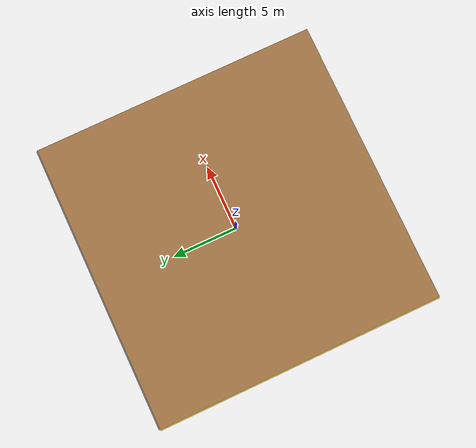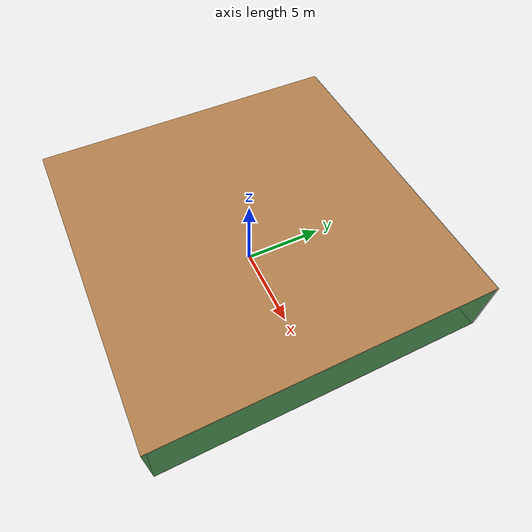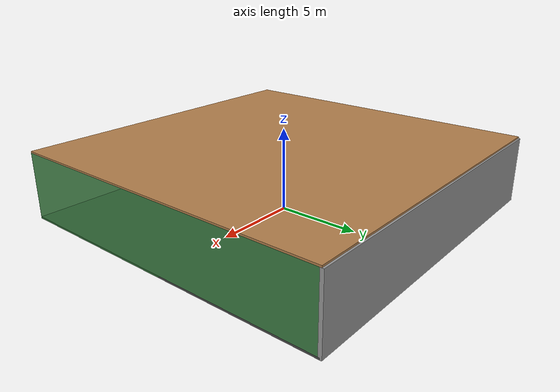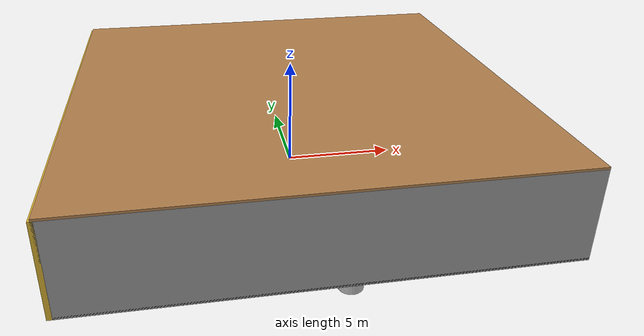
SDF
<sdf version="1.4">
 <world name="default">
  <physics type="ode">
   <max_step_size>0.001</max_step_size>
   <real_time_factor>1</real_time_factor>
   <real_time_update_rate>1000</real_time_update_rate>
   <gravity>0 0 -9.8</gravity>
  </physics>
  <scene><ambient>0.4 0.4 0.4 1</ambient><background>0.7 0.7 0.7 1</background><shadows>1</shadows></scene>
  <model name="Surrounding">
   <static>1</static>
   <link name="Ceiling">
    <collision name="Ceiling_Collision"><geometry><box><size>20 20 0.1</size></box></geometry></collision>
    <visual name="Ceiling_Visual">
     <geometry><box><size>20 20 0.1</size></box></geometry>
     <material>
      <script><uri>file://media/materials/scripts/gazebo.material</uri><name>Gazebo/WoodFloor</name></script>
     </material>
    </visual>
    <pose>0 0 4.05 0 0 0</pose>
   </link>
   <link name="Wall_South">
    <collision name="Wall_South_Collision">
     <geometry><box><size>20 0 4</size></box></geometry>
     <pose>0 0 2 0 -0 0</pose>
    </collision>
    <visual name="Wall_South_Visual">
     <pose>0 0 2 0 -0 0</pose>
     <geometry><box><size>20 0 4</size></box></geometry>
     <material>
      <script><uri>file://media/materials/scripts/gazebo.material</uri><name>Gazebo/Grey</name></script>
     </material>
    </visual>
    <velocity_decay><linear>0</linear><angular>0</angular></velocity_decay>
    <pose>0 -10 0 0 -0 0</pose>
   </link>
   <link name="Wall_East">
    <collision name="Wall_21_Collision">
     <geometry><box><size>20 0 4</size></box></geometry>
     <pose>0 0 2 0 -0 0</pose>
    </collision>
    <visual name="Wall_21_Visual">
     <pose>0 0 2 0 -0 0</pose>
     <geometry><box><size>20 0 4</size></box></geometry>
     <material>
      <script><uri>file://media/materials/scripts/gazebo.material</uri><name>Gazebo/GreenTransparent</name></script>
     </material>
    </visual>
    <velocity_decay><linear>0</linear><angular>0</angular></velocity_decay>
    <pose>10 0 0 0 -0 1.5708</pose>
   </link>
   <link name="Wall_North">
    <collision name="Wall_22_Collision">
     <geometry><box><size>20 0.2 4</size></box></geometry>
     <pose>0 0 2 0 -0 0</pose>
    </collision>
    <visual name="Wall_22_Visual">
     <pose>0 0 2 0 -0 0</pose>
     <geometry><box><size>20 0.2 4</size></box></geometry>
     <material>
      <script><uri>file://media/materials/scripts/gazebo.material</uri><name>Gazebo/Grey</name></script>
     </material>
    </visual>
    <velocity_decay><linear>0</linear><angular>0</angular></velocity_decay>
    <pose>0 10 0 0 -0 0</pose>
   </link>
   <link name="Wall_West">
    <collision name="Wall_23_Collision">
     <geometry><box><size>20 0.2 4</size></box></geometry>
     <pose>0 0 2 0 -0 0</pose>
    </collision>
    <visual name="Wall_23_Visual">
     <pose>0 0 2 0 -0 0</pose>
     <geometry><box><size>20 0.2 4</size></box></geometry>
     <material>
      <script><uri>file://media/materials/scripts/gazebo.material</uri><name>Gazebo/Gold</name></script>
     </material>
    </visual>
    <velocity_decay><linear>0</linear><angular>0</angular></velocity_decay>
    <pose>-10 0 0 0 0 -1.5708</pose>
   </link>
   <link name="Ground_link">
    <collision name="collision">
     <pose>0 0 .05 0 -0 0</pose>
     <geometry><box><size>20 20 0.1</size></box></geometry>
    </collision>
    <visual name="visual">
     <pose>0 0 .05 0 -0 0</pose>
     <geometry><box><size>20 20 0.1</size></box></geometry>
     <material>
      <script><uri>file://media/materials/scripts/gazebo.material</uri><name>Gazebo/Road</name></script>
     </material>
    </visual>
   </link>
   <static>1</static>
  </model>
  <spherical_coordinates>
   <surface_model>EARTH_WGS84</surface_model>
   <latitude_deg>0</latitude_deg>
   <longitude_deg>0</longitude_deg>
   <elevation>0</elevation>
   <heading_deg>0</heading_deg>
  </spherical_coordinates>
  <light name="lightball_0" type="diffuse">
   <diffuse>0.8 0.8 0.8 1</diffuse>
   <specular>0.2 0.2 0.2 1</specular>
   <attenuation>
    <range>100</range>
    <constant>0.7</constant>
    <linear>0.01</linear>
    <quadratic>0.001</quadratic>
   </attenuation>
   <direction>-0.5 0.1 -0.9</direction>
   <pose>8.00028421174 -4.51722229942 3.07083155714 0 0 0</pose>
  </light>
  <light name="lightball_1" type="diffuse">
   <diffuse>0.8 0.8 0.8 1</diffuse>
   <specular>0.2 0.2 0.2 1</specular>
   <attenuation>
    <range>100</range>
    <constant>0.7</constant>
    <linear>0.01</linear>
    <quadratic>0.001</quadratic>
   </attenuation>
   <direction>-0.5 0.1 -0.9</direction>
   <pose>0.586419038662 -3.90814110362 3.04611324972 0 0 0</pose>
  </light>
  <light name="lightball_2" type="diffuse">
   <diffuse>0.8 0.8 0.8 1</diffuse>
   <specular>0.2 0.2 0.2 1</specular>
   <attenuation>
    <range>100</range>
    <constant>0.7</constant>
    <linear>0.01</linear>
    <quadratic>0.001</quadratic>
   </attenuation>
   <direction>-0.5 0.1 -0.9</direction>
   <pose>-3.31495540159 -5.1063230613 2.37660278532 0 0 0</pose>
  </light>
  <light name="lightball_3" type="diffuse">
   <diffuse>0.8 0.8 0.8 1</diffuse>
   <specular>0.2 0.2 0.2 1</specular>
   <attenuation>
    <range>100</range>
    <constant>0.7</constant>
    <linear>0.01</linear>
    <quadratic>0.001</quadratic>
   </attenuation>
   <direction>-0.5 0.1 -0.9</direction>
   <pose>-5.52673168077 -2.26023786281 3.45949930937 0 0 0</pose>
  </light>
  <light name="lightball_4" type="diffuse">
   <diffuse>0.8 0.8 0.8 1</diffuse>
   <specular>0.2 0.2 0.2 1</specular>
   <attenuation>
    <range>100</range>
    <constant>0.7</constant>
    <linear>0.01</linear>
    <quadratic>0.001</quadratic>
   </attenuation>
   <direction>-0.5 0.1 -0.9</direction>
   <pose>7.63654694236 -3.06006709114 3.14664541904 0 0 0</pose>
  </light>
  <light name="lightball_5" type="diffuse">
   <diffuse>0.8 0.8 0.8 1</diffuse>
   <specular>0.2 0.2 0.2 1</specular>
   <attenuation>
    <range>100</range>
    <constant>0.7</constant>
    <linear>0.01</linear>
    <quadratic>0.001</quadratic>
   </attenuation>
   <direction>-0.5 0.1 -0.9</direction>
   <pose>3.67356123353 0.847972905359 0.653687098599 0 0 0</pose>
  </light>
  <light name="lightball_6" type="diffuse">
   <diffuse>0.8 0.8 0.8 1</diffuse>
   <specular>0.2 0.2 0.2 1</specular>
   <attenuation>
    <range>100</range>
    <constant>0.7</constant>
    <linear>0.01</linear>
    <quadratic>0.001</quadratic>
   </attenuation>
   <direction>-0.5 0.1 -0.9</direction>
   <pose>-9.66006248358 6.41265741879 2.51005284474 0 0 0</pose>
  </light>
  <light name="lightball_7" type="diffuse">
   <diffuse>0.8 0.8 0.8 1</diffuse>
   <specular>0.2 0.2 0.2 1</specular>
   <attenuation>
    <range>100</range>
    <constant>0.7</constant>
    <linear>0.01</linear>
    <quadratic>0.001</quadratic>
   </attenuation>
   <direction>-0.5 0.1 -0.9</direction>
   <pose>-1.72896795967 3.60168588499 1.31203392977 0 0 0</pose>
  </light>
  <light name="lightball_8" type="diffuse">
   <diffuse>0.8 0.8 0.8 1</diffuse>
   <specular>0.2 0.2 0.2 1</specular>
   <attenuation>
    <range>100</range>
    <constant>0.7</constant>
    <linear>0.01</linear>
    <quadratic>0.001</quadratic>
   </attenuation>
   <direction>-0.5 0.1 -0.9</direction>
   <pose>-0.212465202753 3.07500443314 0.72396155245 0 0 0</pose>
  </light>
  <include><uri>model://cabinet</uri><pose>-6.35547373681 -6.72601128994 0 0 0 1.56843743113</pose></include>
  <include>
   <uri>model://textured_shapes</uri>
   <pose>-5.62278203415 -3.57378776066 0 0 0 2.22910962875</pose>
  </include>
  <include><uri>model://cabinet</uri><pose>-1.40963837883 -4.73523517282 0 0 0 2.66576735428</pose></include>
  <include><uri>model://cabinet</uri><pose>-2.17290759304 7.28329773908 0 0 0 3.06042451423</pose></include>
  <include>
   <uri>model://textured_shapes</uri>
   <pose>0.912267517819 -7.8876927681 0 0 0 3.00564482598</pose>
  </include>
  <include><uri>model://cabinet</uri><pose>1.94034555829 -0.540201910831 0 0 0 3.00705497109</pose></include>
  <include><uri>model://cabinet</uri><pose>3.91515397833 -2.52162053592 0 0 0 1.54395283984</pose></include>
 </world>
</sdf>

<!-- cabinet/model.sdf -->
<sdf version="1.5">
  <model name="cabinet">
    <static>true</static>
    <link name="cabinet_bottom_plate">
      <inertial>
        <pose>0 0 -1 0 0 0</pose>
        <inertia>
          <ixx>2.050000</ixx>
          <ixy>0</ixy>
          <ixz>0</ixz>
          <iyy>2.050000</iyy>
          <iyz>0</iyz>
          <izz>2.050000</izz>
        </inertia>
        <mass>25.000000</mass>
      </inertial>
      <collision name="cabinet_bottom_plate_geom">
        <pose>0 0 0.010000 0 0 0</pose>
        <geometry>
          <box>
            <size>0.450000 0.450000 0.020000</size>
          </box>
        </geometry>
      </collision>
      <visual name="cabinet_bottom_plate_geom_visual">
        <pose>0 0 0.010000 0 0 0</pose>
        <geometry>
          <box>
            <size>0.450000 0.450000 0.020000</size>
          </box>
        </geometry>
        <material>
          <script>
            <uri>model://media/materials/scripts/gazebo.material</uri>
            <name>Gazebo/Wood</name>
          </script>
        </material>
      </visual>
      <collision name="cabinet_bottom_plate_geom_cabinet_back_plate">
        <pose>0.235000 0 0.510000 0 0 0</pose>
        <geometry>
          <box>
            <size>0.020000 0.450000 1.020000</size>
          </box>
        </geometry>
      </collision>
      <visual name="cabinet_bottom_plate_geom_cabinet_back_plate_visual">
        <pose>0.235000 0 0.510000 0 0 0</pose>
        <geometry>
          <box>
            <size>0.020000 0.450000 1.020000</size>
          </box>
        </geometry>
        <material>
          <script>
            <uri>model://media/materials/scripts/gazebo.material</uri>
            <name>Gazebo/Wood</name>
          </script>
        </material>
      </visual>
      <collision name="cabinet_bottom_plate_geom_cabinet_left_plate">
        <pose>0 0.235000 0.510000 0 0 0</pose>
        <geometry>
          <box>
            <size>0.450000 0.020000 1.020000</size>
          </box>
        </geometry>
      </collision>
      <visual name="cabinet_bottom_plate_geom_cabinet_left_plate_visual">
        <pose>0 0.235000 0.510000 0 0 0</pose>
        <geometry>
          <box>
            <size>0.450000 0.020000 1.020000</size>
          </box>
        </geometry>
        <material>
          <script>
            <uri>model://media/materials/scripts/gazebo.material</uri>
            <name>Gazebo/Wood</name>
          </script>
        </material>
      </visual>
      <collision name="cabinet_bottom_plate_geom_cabinet_middle_plate">
        <pose>0 0 0.510000 0 0 0</pose>
        <geometry>
          <box>
            <size>0.450000 0.450000 0.020000</size>
          </box>
        </geometry>
      </collision>
      <visual name="cabinet_bottom_plate_geom_cabinet_middle_plate_visual">
        <pose>0 0 0.510000 0 0 0</pose>
        <geometry>
          <box>
            <size>0.450000 0.450000 0.020000</size>
          </box>
        </geometry>
        <material>
          <script>
            <uri>model://media/materials/scripts/gazebo.material</uri>
            <name>Gazebo/Wood</name>
          </script>
        </material>
      </visual>
      <collision name="cabinet_bottom_plate_geom_cabinet_right_plate">
        <pose>0 -0.235000 0.510000 0 0 0</pose>
        <geometry>
          <box>
            <size>0.450000 0.020000 1.020000</size>
          </box>
        </geometry>
      </collision>
      <visual name="cabinet_bottom_plate_geom_cabinet_right_plate_visual">
        <pose>0 -0.235000 0.510000 0 0 0</pose>
        <geometry>
          <box>
            <size>0.450000 0.020000 1.020000</size>
          </box>
        </geometry>
        <material>
          <script>
            <uri>model://media/materials/scripts/gazebo.material</uri>
            <name>Gazebo/Wood</name>
          </script>
        </material>
      </visual>
      <collision name="cabinet_bottom_plate_geom_cabinet_top_plate">
        <pose>0 0 1.010000 0 0 0</pose>
        <geometry>
          <box>
            <size>0.450000 0.450000 0.020000</size>
          </box>
        </geometry>
      </collision>
      <visual name="cabinet_bottom_plate_geom_cabinet_top_plate_visual">
        <pose>0 0 1.010000 0 0 0</pose>
        <geometry>
          <box>
            <size>0.450000 0.450000 0.020000</size>
          </box>
        </geometry>
        <material>
          <script>
            <uri>model://media/materials/scripts/gazebo.material</uri>
            <name>Gazebo/Wood</name>
          </script>
        </material>
      </visual>
    </link>
  </model>
</sdf>

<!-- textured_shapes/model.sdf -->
<sdf version="1.6">
  <model name="textured_shapes">
    <pose>0 0 0.5 0 0 0</pose>
    <link name="box">
      <pose>0 -1.5 0 0 0 0</pose>
      <collision name="collision">
        <geometry>
          <box>
            <size>1 1 1</size>
          </box>
        </geometry>
      </collision>
      <visual name="visual">
        <geometry>
          <box>
            <size>1 1 1</size>
          </box>
        </geometry>
        <material>
          <script>
            <uri>model://../model_source/models/textured_shapes/materials/scripts</uri>
            <uri>model://../model_source/models/textured_shapes/materials/textures</uri>
            <name>TexturedShape/Squares</name>
          </script>
        </material>
      </visual>
    </link>
    <link name="sphere">
      <collision name="collision">
        <geometry>
          <sphere>
            <radius>0.5</radius>
          </sphere>
        </geometry>
      </collision>
      <visual name="visual">
        <geometry>
          <sphere>
            <radius>0.5</radius>
          </sphere>
        </geometry>
        <material>
          <script>
            <uri>model://../model_source/models/textured_shapes/materials/scripts</uri>
            <uri>model://../model_source/models/textured_shapes/materials/textures</uri>
            <name>TexturedShape/Squares</name>
          </script>
        </material>
      </visual>
    </link>
    <link name="cylinder">
      <pose>0 1.5 0 0 0 0</pose>
      <collision name="collision">
        <geometry>
          <cylinder>
            <radius>0.5</radius>
            <length>1</length>
          </cylinder>
        </geometry>
      </collision>
      <visual name="visual">
        <geometry>
          <cylinder>
            <radius>0.5</radius>
            <length>1</length>
          </cylinder>
        </geometry>
        <material>
          <script>
            <uri>model://../model_source/models/textured_shapes/materials/scripts</uri>
            <uri>model://../model_source/models/textured_shapes/materials/textures</uri>
            <name>TexturedShape/Squares</name>
          </script>
        </material>
      </visual>
    </link>
  </model>
</sdf>
